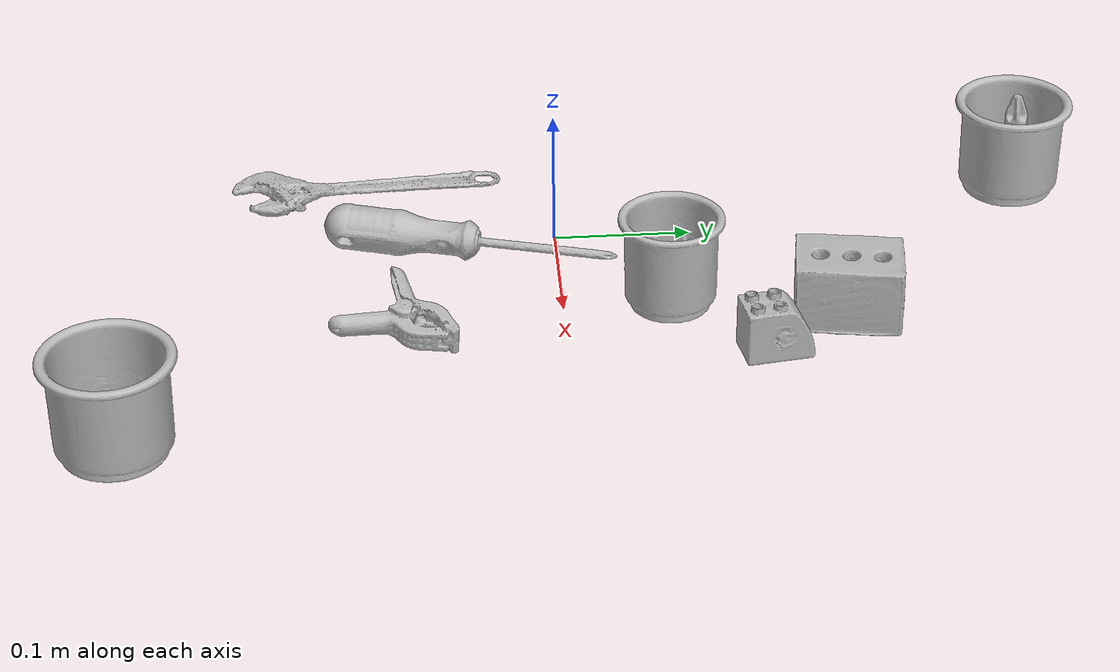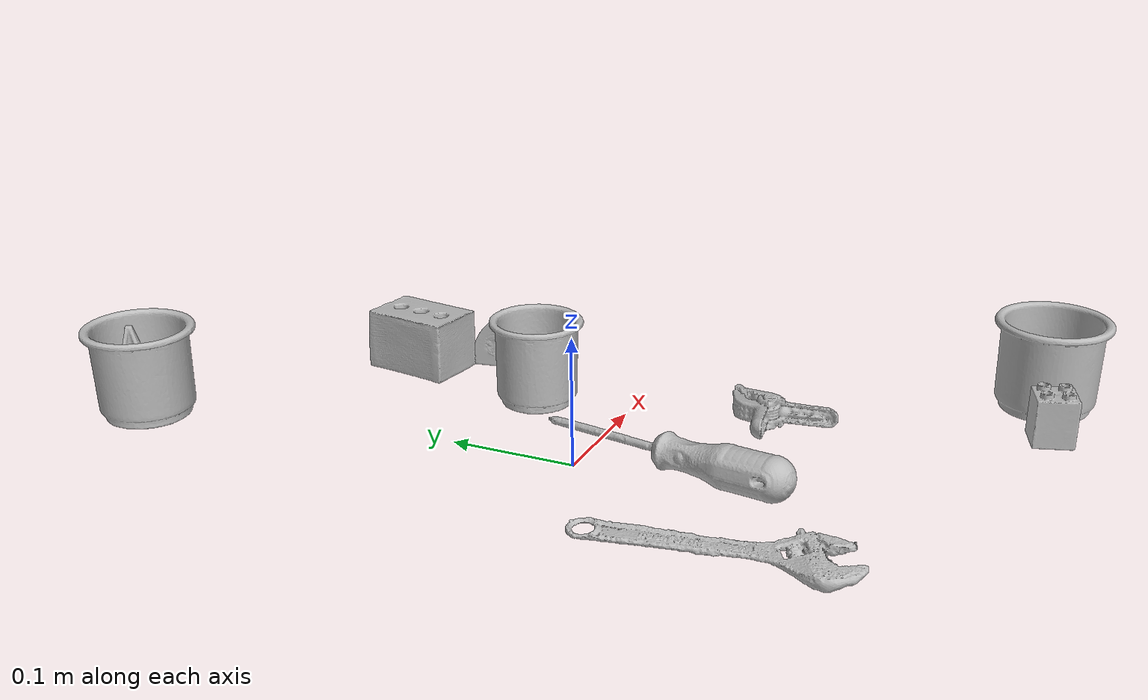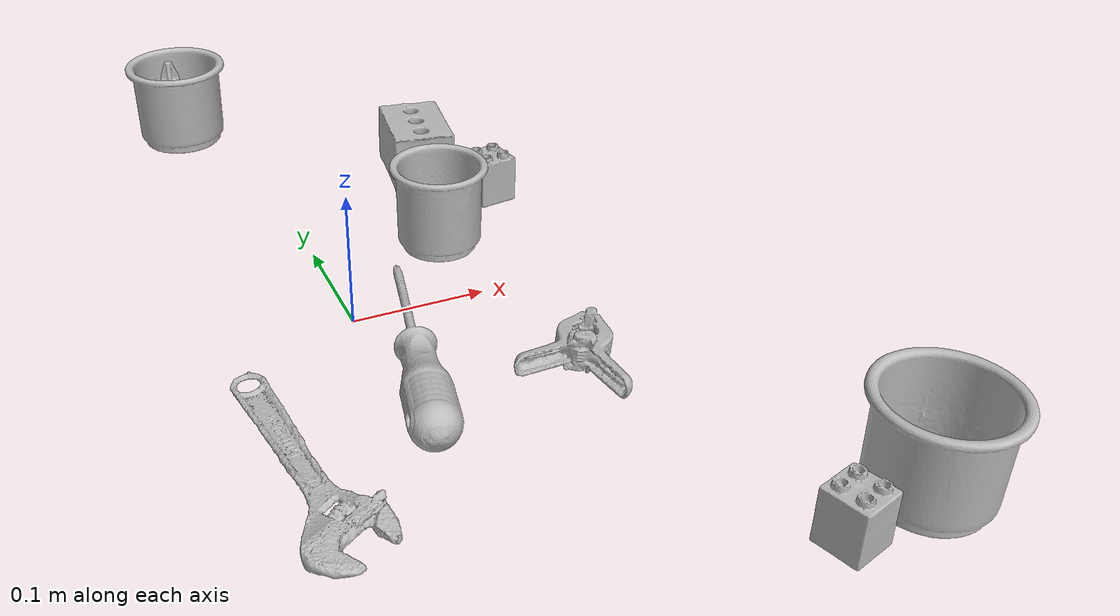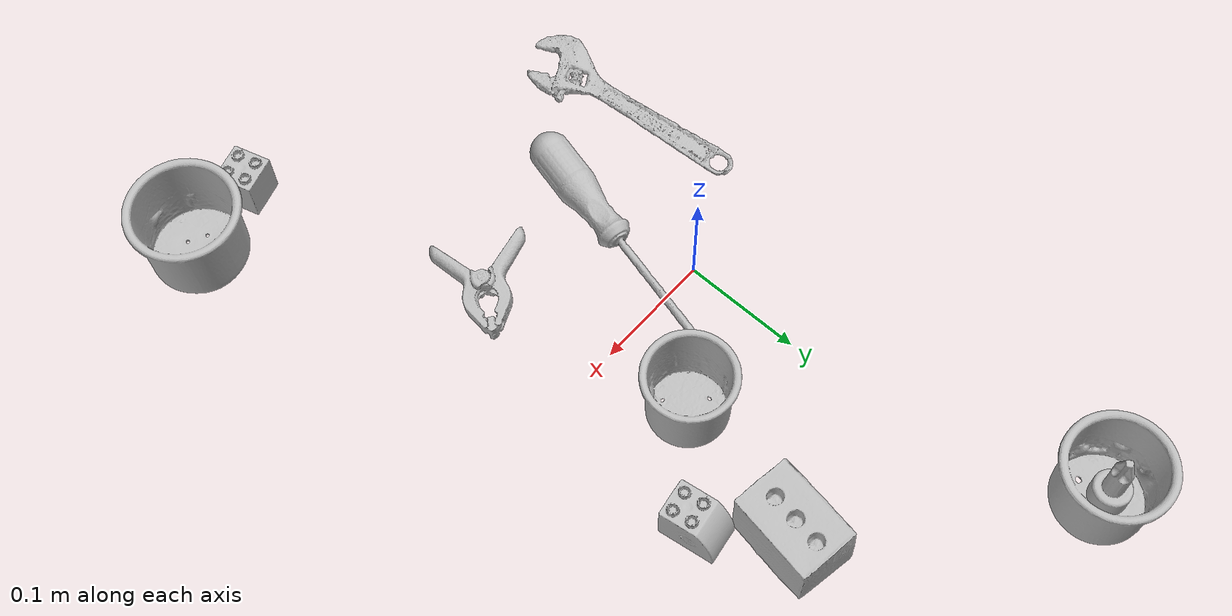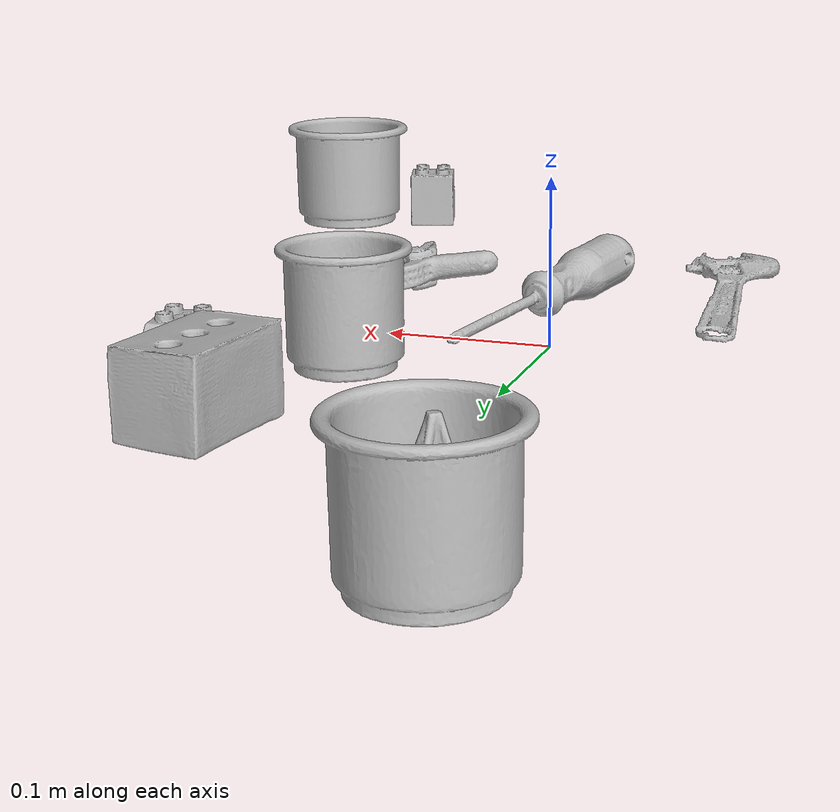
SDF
<sdf version="1.4">
  <world name="default">
    <light name="light1" type="point">
      <pose>0 0 1 0 0 0</pose>
      <diffuse>3 3 3 1</diffuse>
      <specular>3 3 3 1</specular>
    </light>
    <light name="light2" type="point">
      <pose>0 0.5 2 0 0 0</pose>
      <diffuse>1 1 1 1</diffuse>
      <specular>1 1 1 1</specular>
    </light>
    <light name="light3" type="point">
      <pose>0 0.5 2 0 0 0</pose>
      <diffuse>3 3 3 1</diffuse>
      <specular>3 3 3 1</specular>
    </light>
    <scene>
      <ambient>0.7 0.7 0.7</ambient>
    </scene>
    <model name="cup1">
      <link name="link_cup1">
        <collision name="default">
          <geometry>
            <mesh>
              <uri>model://h_cups/collision_meshes/collision.obj</uri>
              <scale>1.0 1.0 1.0</scale>
            </mesh>
          </geometry>
          <surface>
            <friction>
              <ode>
                <mu>0.5</mu>
                <mu2>0.5</mu2>
              </ode>
            </friction>
          <contact>
        <ode>
            <max_vel>0</max_vel>
            <min_depth>0.0001</min_depth>
            <kp>1e8</kp>
        </ode>
    </contact></surface>
        </collision>
        <visual name="default">
          <geometry>
            <mesh>
              <uri>model://h_cups/visual_meshes/visual.dae</uri>
              <scale>1.0 1.0 1.0</scale>
            </mesh>
          </geometry>
        </visual>
        <inertial>
          <mass>0.09017354249954224</mass>
          <pose>-2.702734127524309e-05 0.00023018653155304492 -0.0018405391601845622 -0.024362361674121313 0.06545247408237653 0.12884890922354367</pose>
          <inertia>
            <ixx>0.00011645493</ixx>
            <iyy>0.000115065246</iyy>
            <izz>0.00012212929</izz>
            <ixy>0</ixy>
            <ixz>0</ixz>
            <iyz>0</iyz>
          </inertia>
        </inertial>
      </link>
      <pose>0.2502085268497467 -0.3029657006263733 0.0377580001950264 -1.6462221810862004e-07 -7.490837843689011e-08 1.0072232444818032</pose>
    </model>
    <model name="cup2">
      <link name="link_cup2">
        <collision name="default">
          <geometry>
            <mesh>
              <uri>model://g_cups/collision_meshes/collision.obj</uri>
              <scale>1.0 1.0 1.0</scale>
            </mesh>
          </geometry>
          <surface>
            <friction>
              <ode>
                <mu>0.5</mu>
                <mu2>0.5</mu2>
              </ode>
            </friction>
          <contact>
        <ode>
            <max_vel>0</max_vel>
            <min_depth>0.0001</min_depth>
            <kp>1e8</kp>
        </ode>
    </contact></surface>
        </collision>
        <visual name="default">
          <geometry>
            <mesh>
              <uri>model://g_cups/visual_meshes/visual.dae</uri>
              <scale>1.0 1.0 1.0</scale>
            </mesh>
          </geometry>
        </visual>
        <inertial>
          <mass>0.07892031967639923</mass>
          <pose>-0.0007946275873109698 -4.206384619465098e-05 -0.0021329368464648724 -0.21381953376637775 -0.31410844314425407 0.31119468358147234</pose>
          <inertia>
            <ixx>9.211769e-05</ixx>
            <iyy>9.180432e-05</iyy>
            <izz>9.541806e-05</izz>
            <ixy>0</ixy>
            <ixz>0</ixz>
            <iyz>0</iyz>
          </inertia>
        </inertial>
      </link>
      <pose>-0.050519295036792755 0.34993019700050354 0.03720305487513542 1.7961367176364308e-06 -4.474846985200436e-06 0.39782036062166376</pose>
    </model>
    <model name="cup3">
      <link name="link_cup3">
        <collision name="default">
          <geometry>
            <mesh>
              <uri>model://e_cups/collision_meshes/collision.obj</uri>
              <scale>1.0 1.0 1.0</scale>
            </mesh>
          </geometry>
          <surface>
            <friction>
              <ode>
                <mu>0.5</mu>
                <mu2>0.5</mu2>
              </ode>
            </friction>
          <contact>
        <ode>
            <max_vel>0</max_vel>
            <min_depth>0.0001</min_depth>
            <kp>1e8</kp>
        </ode>
    </contact></surface>
        </collision>
        <visual name="default">
          <geometry>
            <mesh>
              <uri>model://e_cups/visual_meshes/visual.dae</uri>
              <scale>1.0 1.0 1.0</scale>
            </mesh>
          </geometry>
        </visual>
        <inertial>
          <mass>0.08743876963853836</mass>
          <pose>0.0011355745373293757 0.0028797851409763098 -0.0038829741533845663 0.6952398618358687 0.08767880823198544 -0.5235243888876825</pose>
          <inertia>
            <ixx>7.709911e-05</ixx>
            <iyy>8.05796e-05</iyy>
            <izz>7.3715666e-05</izz>
            <ixy>0</ixy>
            <ixz>0</ixz>
            <iyz>0</iyz>
          </inertia>
        </inertial>
      </link>
      <pose>0.09662340581417084 0.07626637816429138 0.035599950700998306 3.3023232720437178e-06 -1.7969795328716606e-06 -0.4394775792143439</pose>
    </model>
    <model name="toy1">
      <link name="link_toy1">
        <collision name="default">
          <geometry>
            <mesh>
              <uri>model://d_lego_duplo/collision_meshes/collision.obj</uri>
              <scale>1.0 1.0 1.0</scale>
            </mesh>
          </geometry>
          <surface>
            <friction>
              <ode>
                <mu>0.5</mu>
                <mu2>0.5</mu2>
              </ode>
            </friction>
          <contact>
        <ode>
            <max_vel>0</max_vel>
            <min_depth>0.0001</min_depth>
            <kp>1e8</kp>
        </ode>
    </contact></surface>
        </collision>
        <visual name="default">
          <geometry>
            <mesh>
              <uri>model://d_lego_duplo/visual_meshes/visual.dae</uri>
              <scale>1.0 1.0 1.0</scale>
            </mesh>
          </geometry>
        </visual>
        <inertial>
          <mass>0.04292278364300728</mass>
          <pose>0.002830562647432089 0.00016366151976399124 0.0008589805802330375 0.08010895821025366 -0.3835521883517419 0.0010296961053417666</pose>
          <inertia>
            <ixx>8.309218e-06</ixx>
            <iyy>1.1793034e-05</iyy>
            <izz>1.1372727e-05</izz>
            <ixy>0</ixy>
            <ixz>0</ixz>
            <iyz>0</iyz>
          </inertia>
        </inertial>
      </link>
      <pose>0.16368457674980164 0.14228816330432892 0.021740227937698364 0.0001942294718897603 0.00016752568919166106 -1.4159085686713901</pose>
    </model>
    <model name="toy2">
      <link name="link_toy2">
        <collision name="default">
          <geometry>
            <mesh>
              <uri>model://foam_brick/collision_meshes/collision.obj</uri>
              <scale>1.0 1.0 1.0</scale>
            </mesh>
          </geometry>
          <surface>
            <friction>
              <ode>
                <mu>0.5</mu>
                <mu2>0.5</mu2>
              </ode>
            </friction>
          <contact>
        <ode>
            <max_vel>0</max_vel>
            <min_depth>0.0001</min_depth>
            <kp>1e8</kp>
        </ode>
    </contact></surface>
        </collision>
        <visual name="default">
          <geometry>
            <mesh>
              <uri>model://foam_brick/visual_meshes/visual.dae</uri>
              <scale>1.0 1.0 1.0</scale>
            </mesh>
          </geometry>
        </visual>
        <inertial>
          <mass>0.21218973398208618</mass>
          <pose>-0.0002522472059354186 0.00034584320383146405 -0.0002532101352699101 -0.2940188212014215 0.017274433063530492 -0.0007449861184219897</pose>
          <inertia>
            <ixx>9.268843e-05</ixx>
            <iyy>0.00014798183</iyy>
            <izz>0.00014986254</izz>
            <ixy>0</ixy>
            <ixz>0</ixz>
            <iyz>0</iyz>
          </inertia>
        </inertial>
      </link>
      <pose>0.1241031289100647 0.1993500292301178 0.02592279389500618 0.01341163013792257 0.004152862341983472 1.419163079688673</pose>
    </model>
    <model name="toy3">
      <link name="link_toy3">
        <collision name="default">
          <geometry>
            <mesh>
              <uri>model://f_lego_duplo/collision_meshes/collision.obj</uri>
              <scale>1.0 1.0 1.0</scale>
            </mesh>
          </geometry>
          <surface>
            <friction>
              <ode>
                <mu>0.5</mu>
                <mu2>0.5</mu2>
              </ode>
            </friction>
          <contact>
        <ode>
            <max_vel>0</max_vel>
            <min_depth>0.0001</min_depth>
            <kp>1e8</kp>
        </ode>
    </contact></surface>
        </collision>
        <visual name="default">
          <geometry>
            <mesh>
              <uri>model://f_lego_duplo/visual_meshes/visual.dae</uri>
              <scale>1.0 1.0 1.0</scale>
            </mesh>
          </geometry>
        </visual>
        <inertial>
          <mass>0.024021470919251442</mass>
          <pose>2.3694197807344608e-05 0.00013393140397965908 0.0018837875686585903 0.02983869554967358 -0.014424868856459862 -0.6756716113514201</pose>
          <inertia>
            <ixx>5.075869e-06</ixx>
            <iyy>5.1210886e-06</iyy>
            <izz>4.4060694e-06</izz>
            <ixy>0</ixy>
            <ixz>0</ixz>
            <iyz>0</iyz>
          </inertia>
        </inertial>
      </link>
      <pose>0.1855444461107254 -0.3164248764514923 0.02187100239098072 2.325172989521574e-06 1.7270770238291984e-06 -1.275067614860738</pose>
    </model>
    <model name="toy4">
      <link name="link_toy4">
        <collision name="default">
          <geometry>
            <mesh>
              <uri>model://d_toy_airplane/collision_meshes/collision.obj</uri>
              <scale>1.0 1.0 1.0</scale>
            </mesh>
          </geometry>
          <surface>
            <friction>
              <ode>
                <mu>0.5</mu>
                <mu2>0.5</mu2>
              </ode>
            </friction>
          <contact>
        <ode>
            <max_vel>0</max_vel>
            <min_depth>0.0001</min_depth>
            <kp>1e8</kp>
        </ode>
    </contact></surface>
        </collision>
        <visual name="default">
          <geometry>
            <mesh>
              <uri>model://d_toy_airplane/visual_meshes/visual.dae</uri>
              <scale>1.0 1.0 1.0</scale>
            </mesh>
          </geometry>
        </visual>
        <inertial>
          <mass>0.024586454033851624</mass>
          <pose>9.410288475919515e-05 -5.809331560158171e-05 -0.011728096753358841 0.0002662237897190017 0.004679022855495211 0.5193045098973154</pose>
          <inertia>
            <ixx>7.370539e-06</ixx>
            <iyy>7.376099e-06</iyy>
            <izz>2.2252145e-06</izz>
            <ixy>0</ixy>
            <ixz>0</ixz>
            <iyz>0</iyz>
          </inertia>
        </inertial>
      </link>
      <pose>-0.05535830557346344 0.35402655601501465 0.0420057512819767 -0.013832977174837842 -0.009542592680156496 2.2226964881156492</pose>
    </model>
    <model name="hardware1">
      <link name="link_hardware1">
        <collision name="default">
          <geometry>
            <mesh>
              <uri>model://phillips_screwdriver/collision_meshes/collision.obj</uri>
              <scale>1.0 1.0 1.0</scale>
            </mesh>
          </geometry>
          <surface>
            <friction>
              <ode>
                <mu>0.5</mu>
                <mu2>0.5</mu2>
              </ode>
            </friction>
          <contact>
        <ode>
            <max_vel>0</max_vel>
            <min_depth>0.0001</min_depth>
            <kp>1e8</kp>
        </ode>
    </contact></surface>
        </collision>
        <visual name="default">
          <geometry>
            <mesh>
              <uri>model://phillips_screwdriver/visual_meshes/visual.dae</uri>
              <scale>1.0 1.0 1.0</scale>
            </mesh>
          </geometry>
        </visual>
        <inertial>
          <mass>0.10962587594985962</mass>
          <pose>-0.04777182266116142 0.0010362300090491772 -0.00045555492397397757 -0.1572763288958183 0.005850995451121224 -0.002156747064170485</pose>
          <inertia>
            <ixx>1.2879916e-05</ixx>
            <iyy>0.00016149164</iyy>
            <izz>0.00016162884</izz>
            <ixy>0</ixy>
            <ixz>0</ixz>
            <iyz>0</iyz>
          </inertia>
        </inertial>
      </link>
      <pose>0.023991454392671585 -0.06565038859844208 0.015409650281071663 0.06561080105308553 0.03756825455256138 1.3460768616765706</pose>
    </model>
    <model name="hardware2">
      <link name="link_hardware2">
        <collision name="default">
          <geometry>
            <mesh>
              <uri>model://adjustable_wrench/collision_meshes/collision.obj</uri>
              <scale>1.0 1.0 1.0</scale>
            </mesh>
          </geometry>
          <surface>
            <friction>
              <ode>
                <mu>0.5</mu>
                <mu2>0.5</mu2>
              </ode>
            </friction>
          <contact>
        <ode>
            <max_vel>0</max_vel>
            <min_depth>0.0001</min_depth>
            <kp>1e8</kp>
        </ode>
    </contact></surface>
        </collision>
        <visual name="default">
          <geometry>
            <mesh>
              <uri>model://adjustable_wrench/visual_meshes/visual.dae</uri>
              <scale>1.0 1.0 1.0</scale>
            </mesh>
          </geometry>
        </visual>
        <inertial>
          <mass>0.02999398298561573</mass>
          <pose>0.03740980848670006 -0.002896887483075261 -0.001114922808483243 -0.014473357351062987 0.006656019865341655 -0.010954188906160397</pose>
          <inertia>
            <ixx>6.138701e-06</ixx>
            <iyy>7.184631e-05</iyy>
            <izz>7.765895e-05</izz>
            <ixy>0</ixy>
            <ixz>0</ixz>
            <iyz>0</iyz>
          </inertia>
        </inertial>
      </link>
      <pose>-0.07531498372554779 -0.14082860946655273 0.0061250426806509495 0.04675928146475566 -0.029270612382011525 -1.4780258488386127</pose>
    </model>
    <model name="hardware3">
      <link name="link_hardware3">
        <collision name="default">
          <geometry>
            <mesh>
              <uri>model://medium_clamp/collision_meshes/collision.obj</uri>
              <scale>1.0 1.0 1.0</scale>
            </mesh>
          </geometry>
          <surface>
            <friction>
              <ode>
                <mu>0.5</mu>
                <mu2>0.5</mu2>
              </ode>
            </friction>
          <contact>
        <ode>
            <max_vel>0</max_vel>
            <min_depth>0.0001</min_depth>
            <kp>1e8</kp>
        </ode>
    </contact></surface>
        </collision>
        <visual name="default">
          <geometry>
            <mesh>
              <uri>model://medium_clamp/visual_meshes/visual.dae</uri>
              <scale>1.0 1.0 1.0</scale>
            </mesh>
          </geometry>
        </visual>
        <inertial>
          <mass>0.038817502558231354</mass>
          <pose>0.005390993785113096 0.0003953237028326839 -0.0001222158462041989 -0.0012269117309439718 0.002584502422387493 0.03820772500943274</pose>
          <inertia>
            <ixx>1.05752815e-05</ixx>
            <iyy>1.539003e-05</iyy>
            <izz>2.3705257e-05</izz>
            <ixy>0</ixy>
            <ixz>0</ixz>
            <iyz>0</iyz>
          </inertia>
        </inertial>
      </link>
      <pose>0.1233295127749443 -0.1125633642077446 0.013533578254282475 0.07742632504817602 0.08544980730766717 0.9258170585488733</pose>
    </model>
  <physics type="ode">
      <max_contacts>50</max_contacts>
      <ode>
        <solver>
          <type>quick</type>
          <iters>75</iters>
        </solver>
        <constraints>
          <contact_max_correcting_vel>0</contact_max_correcting_vel>
          <contact_surface_layer>0</contact_surface_layer>
        </constraints>
      </ode>
    </physics></world>
</sdf>
